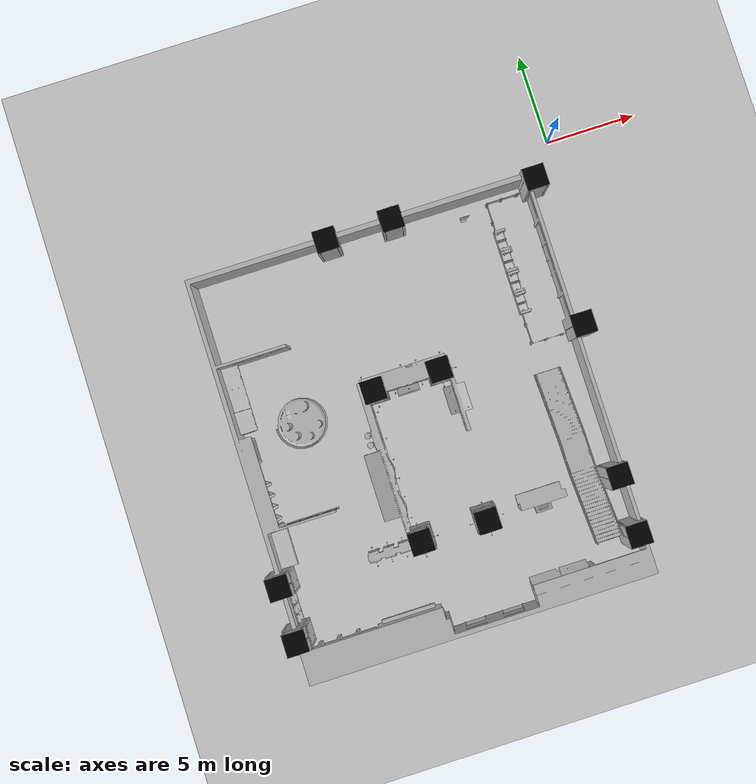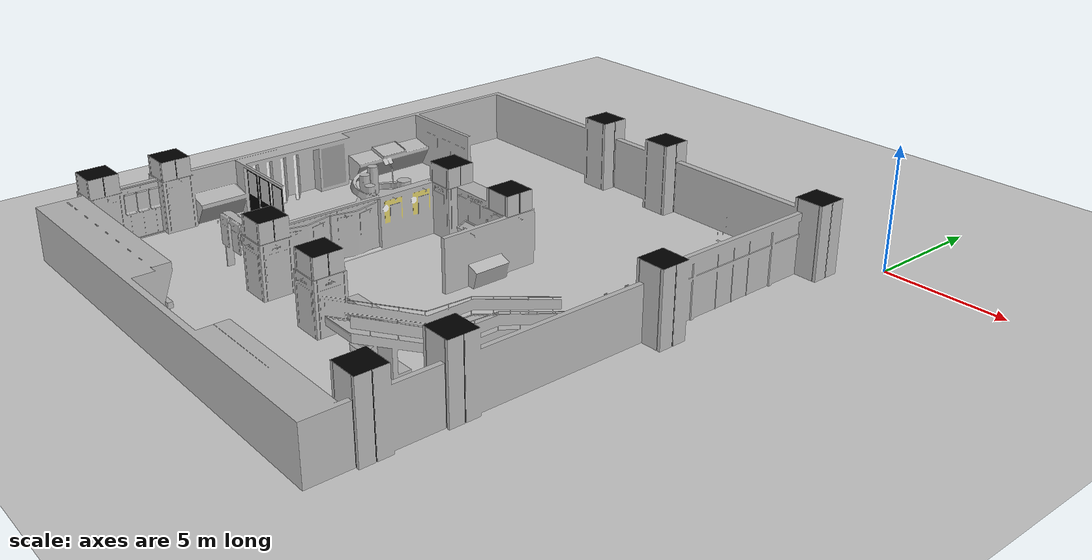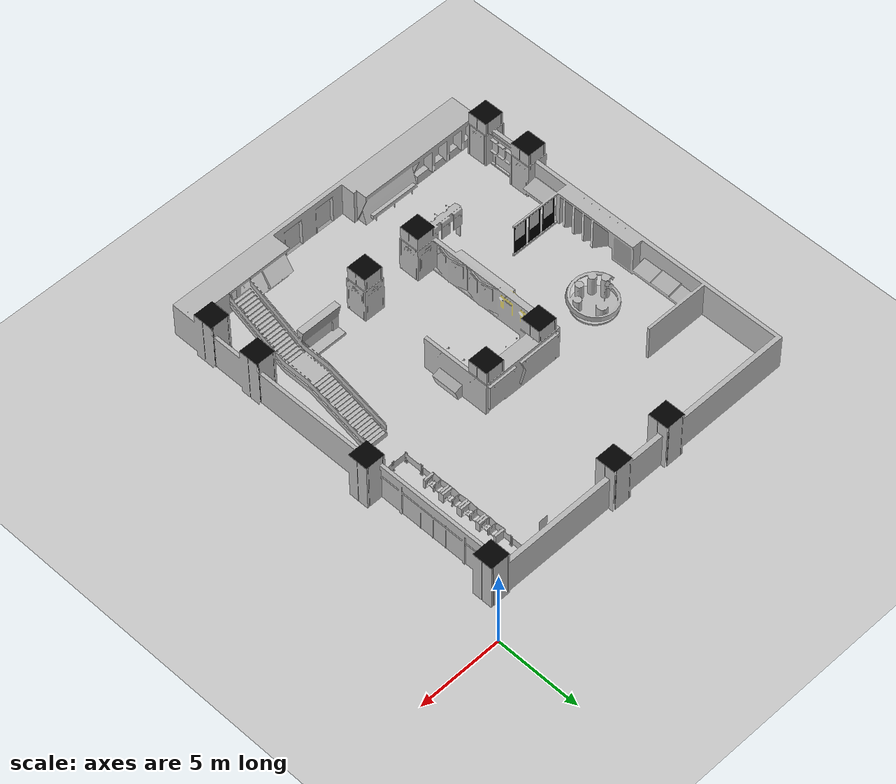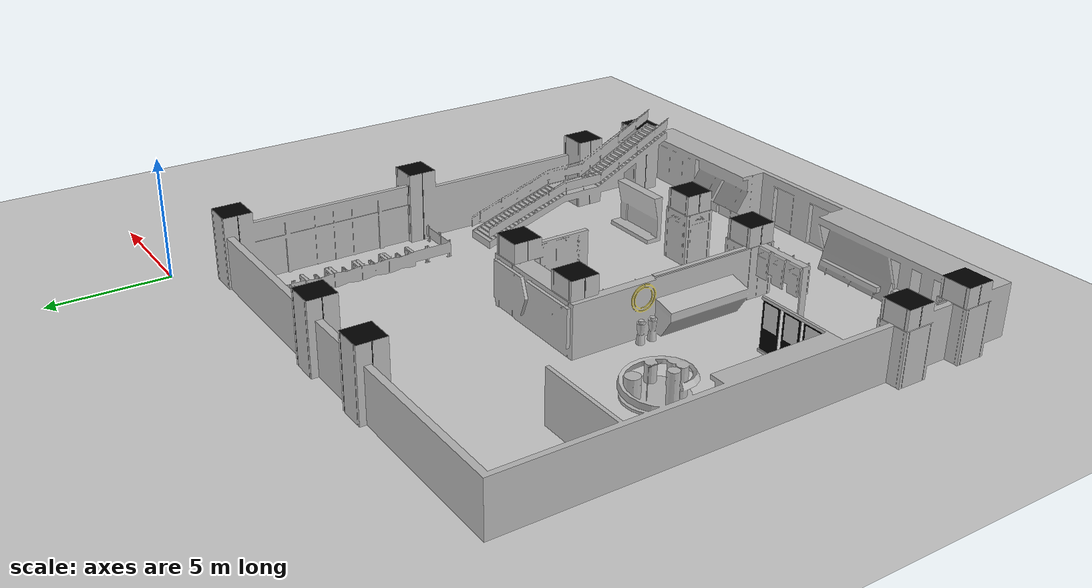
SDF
<sdf version="1.7">
 <world name="default">
  <model name="ground_plane">
   <static>1</static>
   <link name="link">
    <collision name="collision">
     <geometry><plane><normal>0 0 1</normal><size>100 100</size></plane></geometry>
     <surface><friction><ode><mu>100</mu><mu2>50</mu2></ode></friction></surface>
    </collision>
    <visual name="visual">
     <cast_shadows>0</cast_shadows>
     <geometry><plane><normal>0 0 1</normal><size>100 100</size></plane></geometry>
     <material>
      <script><uri>file://media/materials/scripts/gazebo.material</uri><name>Gazebo/Grey</name></script>
     </material>
    </visual>
   </link>
  </model>
  <model name="iscas_museum">
   <link name="link">
    <inertial><mass>15</mass></inertial>
    <collision name="collision">
     <pose>0 0 0 0 0 -1.57</pose>
     <geometry><mesh><uri>model://iscas_museum/meshes/ISCAS_museum.dae</uri></mesh></geometry>
    </collision>
    <visual name="visual">
     <pose>0 0 0 0 0 -1.57</pose>
     <geometry><mesh><uri>model://iscas_museum/meshes/ISCAS_museum.dae</uri></mesh></geometry>
    </visual>
   </link>
   <static>1</static>
   <pose>-11.7264 -13.0831 0 0 -0 0</pose>
  </model>
 </world>
</sdf>
